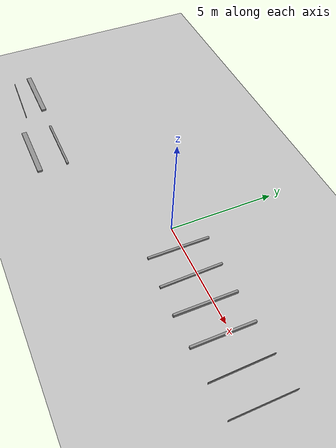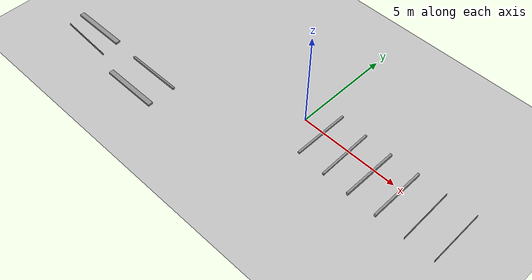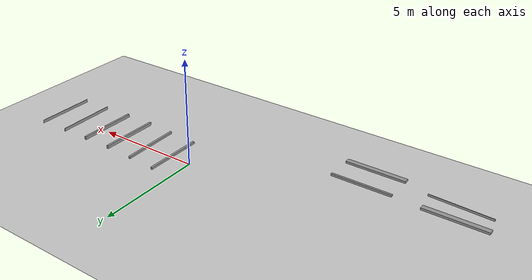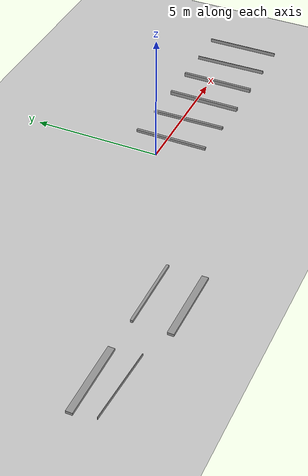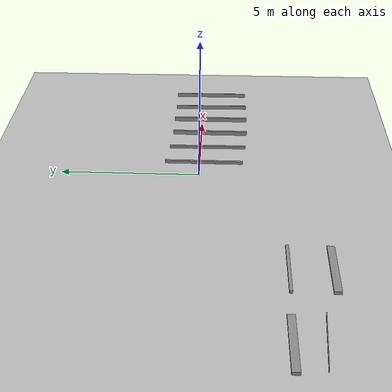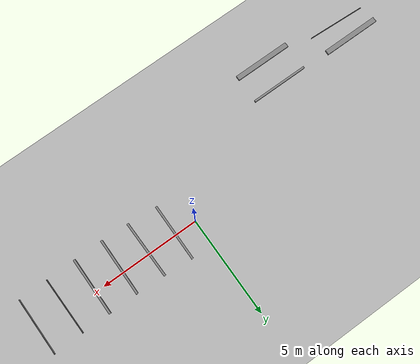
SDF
<sdf version="1.7">
 <world name="default">
  <model name="ground_plane">
   <static>1</static>
   <link name="link">
    <collision name="collision">
     <geometry><plane><normal>0 0 1</normal><size>100 100</size></plane></geometry>
     <surface><friction><ode><mu>0.7</mu><mu2>0.7</mu2></ode></friction></surface>
    </collision>
    <visual name="visual">
     <cast_shadows>0</cast_shadows>
     <geometry><plane><normal>0 0 1</normal><size>100 100</size></plane></geometry>
     <material>
      <script><uri>file://media/materials/scripts/gazebo.material</uri><name>Gazebo/Grey</name></script>
     </material>
    </visual>
   </link>
  </model>
  <light name="sun" type="directional">
   <pose>0 0 10 0 -0 0</pose>
   <diffuse>0.8 0.8 0.8 1</diffuse>
   <specular>0.1 0.1 0.1 1</specular>
   <attenuation>
    <range>1000</range>
    <constant>0.9</constant>
    <linear>0.01</linear>
    <quadratic>0.001</quadratic>
   </attenuation>
   <direction>-0.5 0.5 -1</direction>
   <spot><inner_angle>0</inner_angle><outer_angle>0</outer_angle><falloff>0</falloff></spot>
  </light>
  <gravity>0 0 -9.81</gravity>
  <magnetic_field>6e-06 2.3e-05 -4.2e-05</magnetic_field>
  <atmosphere type="adiabatic"/>
  <physics name="default_physics" default="0" type="ode">
   <max_step_size>0.001</max_step_size>
   <real_time_factor>1</real_time_factor>
   <real_time_update_rate>1000</real_time_update_rate>
  </physics>
  <scene><ambient>0.4 0.4 0.4 1</ambient><background>0.7 0.7 0.7 1</background><shadows>1</shadows></scene>
  <spherical_coordinates>
   <surface_model>EARTH_WGS84</surface_model>
   <latitude_deg>0</latitude_deg>
   <longitude_deg>0</longitude_deg>
   <elevation>0</elevation>
   <heading_deg>0</heading_deg>
  </spherical_coordinates>
  <model name="pipe_0.1">
   <link name="link">
    <inertial>
     <mass>1</mass>
     <inertia>
      <ixx>0.166667</ixx>
      <ixy>0</ixy>
      <ixz>0</ixz>
      <iyy>0.166667</iyy>
      <iyz>0</iyz>
      <izz>0.166667</izz>
     </inertia>
    </inertial>
    <visual name="visual">
     <geometry><box><size>2.87721 0.1 0.1</size></box></geometry>
     <material>
      <script><name>Gazebo/Grey</name><uri>file://media/materials/scripts/gazebo.material</uri></script>
      <shader type="pixel"><normal_map>__default__</normal_map></shader>
      <ambient>0.3 0.3 0.3 1</ambient>
      <diffuse>0.7 0.7 0.7 1</diffuse>
      <specular>0.01 0.01 0.01 1</specular>
      <emissive>0 0 0 1</emissive>
     </material>
    </visual>
    <collision name="collision">
     <geometry><box><size>2.87721 0.1 0.1</size></box></geometry>
     <surface>
      <friction>
       <ode><mu>1</mu><mu2>1</mu2><fdir1>0 0 0</fdir1><slip1>0</slip1><slip2>0</slip2></ode>
       <torsional>
        <coefficient>1</coefficient>
        <patch_radius>0</patch_radius>
        <surface_radius>0</surface_radius>
        <use_patch_radius>1</use_patch_radius>
        <ode><slip>0</slip></ode>
       </torsional>
      </friction>
      <bounce><restitution_coefficient>0</restitution_coefficient><threshold>1e+06</threshold></bounce>
      <contact>
       <collide_without_contact>0</collide_without_contact>
       <collide_without_contact_bitmask>1</collide_without_contact_bitmask>
       <collide_bitmask>1</collide_bitmask>
       <ode>
        <soft_cfm>0</soft_cfm>
        <soft_erp>0.2</soft_erp>
        <kp>1e+13</kp>
        <kd>1</kd>
        <max_vel>0.01</max_vel>
        <min_depth>0</min_depth>
       </ode>
       <bullet>
        <split_impulse>1</split_impulse>
        <split_impulse_penetration_threshold>-0.01</split_impulse_penetration_threshold>
        <soft_cfm>0</soft_cfm>
        <soft_erp>0.2</soft_erp>
        <kp>1e+13</kp>
        <kd>1</kd>
       </bullet>
      </contact>
     </surface>
    </collision>
   </link>
   <static>1</static>
   <pose>2.53264 -0.256496 0.049491 0 0 -1.55362</pose>
  </model>
  <model name="pipe_0.15">
   <link name="link">
    <inertial>
     <mass>1</mass>
     <inertia>
      <ixx>0.166667</ixx>
      <ixy>0</ixy>
      <ixz>0</ixz>
      <iyy>0.166667</iyy>
      <iyz>0</iyz>
      <izz>0.166667</izz>
     </inertia>
    </inertial>
    <visual name="visual">
     <geometry><box><size>2.87721 0.1 0.15</size></box></geometry>
     <material>
      <script><name>Gazebo/Grey</name><uri>file://media/materials/scripts/gazebo.material</uri></script>
      <shader type="pixel"><normal_map>__default__</normal_map></shader>
      <ambient>0.3 0.3 0.3 1</ambient>
      <diffuse>0.7 0.7 0.7 1</diffuse>
      <specular>0.01 0.01 0.01 1</specular>
      <emissive>0 0 0 1</emissive>
     </material>
    </visual>
    <collision name="collision">
     <geometry><box><size>2.87721 0.1 0.15</size></box></geometry>
     <surface>
      <friction>
       <ode><mu>1</mu><mu2>1</mu2><fdir1>0 0 0</fdir1><slip1>0</slip1><slip2>0</slip2></ode>
       <torsional>
        <coefficient>1</coefficient>
        <patch_radius>0</patch_radius>
        <surface_radius>0</surface_radius>
        <use_patch_radius>1</use_patch_radius>
        <ode><slip>0</slip></ode>
       </torsional>
      </friction>
      <bounce><restitution_coefficient>0</restitution_coefficient><threshold>1e+06</threshold></bounce>
      <contact>
       <collide_without_contact>0</collide_without_contact>
       <collide_without_contact_bitmask>1</collide_without_contact_bitmask>
       <collide_bitmask>1</collide_bitmask>
       <ode>
        <soft_cfm>0</soft_cfm>
        <soft_erp>0.2</soft_erp>
        <kp>1e+13</kp>
        <kd>1</kd>
        <max_vel>0.01</max_vel>
        <min_depth>0</min_depth>
       </ode>
       <bullet>
        <split_impulse>1</split_impulse>
        <split_impulse_penetration_threshold>-0.01</split_impulse_penetration_threshold>
        <soft_cfm>0</soft_cfm>
        <soft_erp>0.2</soft_erp>
        <kp>1e+13</kp>
        <kd>1</kd>
       </bullet>
      </contact>
     </surface>
    </collision>
   </link>
   <static>1</static>
   <pose>5.40253 -0.317424 0.073658 0 0 -1.57266</pose>
  </model>
  <model name="pipe_0.1_clone">
   <link name="link">
    <inertial>
     <mass>1</mass>
     <inertia>
      <ixx>0.166667</ixx>
      <ixy>0</ixy>
      <ixz>0</ixz>
      <iyy>0.166667</iyy>
      <iyz>0</iyz>
      <izz>0.166667</izz>
     </inertia>
    </inertial>
    <visual name="visual">
     <geometry><box><size>2.87721 0.1 0.1</size></box></geometry>
     <material>
      <script><name>Gazebo/Grey</name><uri>file://media/materials/scripts/gazebo.material</uri></script>
      <shader type="pixel"><normal_map>__default__</normal_map></shader>
      <ambient>0.3 0.3 0.3 1</ambient>
      <diffuse>0.7 0.7 0.7 1</diffuse>
      <specular>0.01 0.01 0.01 1</specular>
      <emissive>0 0 0 1</emissive>
     </material>
    </visual>
    <collision name="collision">
     <geometry><box><size>2.87721 0.1 0.1</size></box></geometry>
     <surface>
      <friction>
       <ode><mu>1</mu><mu2>1</mu2><fdir1>0 0 0</fdir1><slip1>0</slip1><slip2>0</slip2></ode>
       <torsional>
        <coefficient>1</coefficient>
        <patch_radius>0</patch_radius>
        <surface_radius>0</surface_radius>
        <use_patch_radius>1</use_patch_radius>
        <ode><slip>0</slip></ode>
       </torsional>
      </friction>
      <bounce><restitution_coefficient>0</restitution_coefficient><threshold>1e+06</threshold></bounce>
      <contact>
       <collide_without_contact>0</collide_without_contact>
       <collide_without_contact_bitmask>1</collide_without_contact_bitmask>
       <collide_bitmask>1</collide_bitmask>
       <ode>
        <soft_cfm>0</soft_cfm>
        <soft_erp>0.2</soft_erp>
        <kp>1e+13</kp>
        <kd>1</kd>
        <max_vel>0.01</max_vel>
        <min_depth>0</min_depth>
       </ode>
       <bullet>
        <split_impulse>1</split_impulse>
        <split_impulse_penetration_threshold>-0.01</split_impulse_penetration_threshold>
        <soft_cfm>0</soft_cfm>
        <soft_erp>0.2</soft_erp>
        <kp>1e+13</kp>
        <kd>1</kd>
       </bullet>
      </contact>
     </surface>
    </collision>
   </link>
   <static>1</static>
   <pose>1.0721 -0.148517 0.049491 0 0 -1.57462</pose>
  </model>
  <model name="pipe_0.15_clone">
   <link name="link">
    <inertial>
     <mass>1</mass>
     <inertia>
      <ixx>0.166667</ixx>
      <ixy>0</ixy>
      <ixz>0</ixz>
      <iyy>0.166667</iyy>
      <iyz>0</iyz>
      <izz>0.166667</izz>
     </inertia>
    </inertial>
    <visual name="visual">
     <geometry><box><size>2.87721 0.1 0.15</size></box></geometry>
     <material>
      <script><name>Gazebo/Grey</name><uri>file://media/materials/scripts/gazebo.material</uri></script>
      <shader type="pixel"><normal_map>__default__</normal_map></shader>
      <ambient>0.3 0.3 0.3 1</ambient>
      <diffuse>0.7 0.7 0.7 1</diffuse>
      <specular>0.01 0.01 0.01 1</specular>
      <emissive>0 0 0 1</emissive>
     </material>
    </visual>
    <collision name="collision">
     <geometry><box><size>2.87721 0.1 0.15</size></box></geometry>
     <surface>
      <friction>
       <ode><mu>1</mu><mu2>1</mu2><fdir1>0 0 0</fdir1><slip1>0</slip1><slip2>0</slip2></ode>
       <torsional>
        <coefficient>1</coefficient>
        <patch_radius>0</patch_radius>
        <surface_radius>0</surface_radius>
        <use_patch_radius>1</use_patch_radius>
        <ode><slip>0</slip></ode>
       </torsional>
      </friction>
      <bounce><restitution_coefficient>0</restitution_coefficient><threshold>1e+06</threshold></bounce>
      <contact>
       <collide_without_contact>0</collide_without_contact>
       <collide_without_contact_bitmask>1</collide_without_contact_bitmask>
       <collide_bitmask>1</collide_bitmask>
       <ode>
        <soft_cfm>0</soft_cfm>
        <soft_erp>0.2</soft_erp>
        <kp>1e+13</kp>
        <kd>1</kd>
        <max_vel>0.01</max_vel>
        <min_depth>0</min_depth>
       </ode>
       <bullet>
        <split_impulse>1</split_impulse>
        <split_impulse_penetration_threshold>-0.01</split_impulse_penetration_threshold>
        <soft_cfm>0</soft_cfm>
        <soft_erp>0.2</soft_erp>
        <kp>1e+13</kp>
        <kd>1</kd>
       </bullet>
      </contact>
     </surface>
    </collision>
   </link>
   <static>1</static>
   <pose>3.94317 -0.320369 0.073658 0 0 -1.57574</pose>
  </model>
  <model name="pipe_0.1_clone_clone">
   <link name="link">
    <inertial>
     <mass>1</mass>
     <inertia>
      <ixx>0.166667</ixx>
      <ixy>0</ixy>
      <ixz>0</ixz>
      <iyy>0.166667</iyy>
      <iyz>0</iyz>
      <izz>0.166667</izz>
     </inertia>
    </inertial>
    <visual name="visual">
     <geometry><box><size>2.87721 0.0999989 0.1</size></box></geometry>
     <material>
      <script><name>Gazebo/Grey</name><uri>file://media/materials/scripts/gazebo.material</uri></script>
      <shader type="pixel"><normal_map>__default__</normal_map></shader>
      <ambient>0.3 0.3 0.3 1</ambient>
      <diffuse>0.7 0.7 0.7 1</diffuse>
      <specular>0.01 0.01 0.01 1</specular>
      <emissive>0 0 0 1</emissive>
     </material>
    </visual>
    <collision name="collision">
     <geometry><box><size>2.87721 0.0999989 0.1</size></box></geometry>
     <surface>
      <friction>
       <ode><mu>1</mu><mu2>1</mu2><fdir1>0 0 0</fdir1><slip1>0</slip1><slip2>0</slip2></ode>
       <torsional>
        <coefficient>1</coefficient>
        <patch_radius>0</patch_radius>
        <surface_radius>0</surface_radius>
        <use_patch_radius>1</use_patch_radius>
        <ode><slip>0</slip></ode>
       </torsional>
      </friction>
      <bounce><restitution_coefficient>0</restitution_coefficient><threshold>1e+06</threshold></bounce>
      <contact>
       <collide_without_contact>0</collide_without_contact>
       <collide_without_contact_bitmask>1</collide_without_contact_bitmask>
       <collide_bitmask>1</collide_bitmask>
       <ode>
        <soft_cfm>0</soft_cfm>
        <soft_erp>0.2</soft_erp>
        <kp>1e+13</kp>
        <kd>1</kd>
        <max_vel>0.01</max_vel>
        <min_depth>0</min_depth>
       </ode>
       <bullet>
        <split_impulse>1</split_impulse>
        <split_impulse_penetration_threshold>-0.01</split_impulse_penetration_threshold>
        <soft_cfm>0</soft_cfm>
        <soft_erp>0.2</soft_erp>
        <kp>1e+13</kp>
        <kd>1</kd>
       </bullet>
      </contact>
     </surface>
    </collision>
   </link>
   <static>1</static>
   <pose>-6.95701 -2.94768 0.049491 0 -0 0</pose>
  </model>
  <model name="pipe_0.1_clone_clone_clone">
   <link name="link">
    <inertial>
     <mass>1</mass>
     <inertia>
      <ixx>0.166667</ixx>
      <ixy>0</ixy>
      <ixz>0</ixz>
      <iyy>0.166667</iyy>
      <iyz>0</iyz>
      <izz>0.166667</izz>
     </inertia>
    </inertial>
    <visual name="visual">
     <geometry><box><size>2.87721 0.243662 0.1</size></box></geometry>
     <material>
      <script><name>Gazebo/Grey</name><uri>file://media/materials/scripts/gazebo.material</uri></script>
      <shader type="pixel"><normal_map>__default__</normal_map></shader>
      <ambient>0.3 0.3 0.3 1</ambient>
      <diffuse>0.7 0.7 0.7 1</diffuse>
      <specular>0.01 0.01 0.01 1</specular>
      <emissive>0 0 0 1</emissive>
     </material>
    </visual>
    <collision name="collision">
     <geometry><box><size>2.87721 0.243662 0.1</size></box></geometry>
     <surface>
      <friction>
       <ode><mu>1</mu><mu2>1</mu2><fdir1>0 0 0</fdir1><slip1>0</slip1><slip2>0</slip2></ode>
       <torsional>
        <coefficient>1</coefficient>
        <patch_radius>0</patch_radius>
        <surface_radius>0</surface_radius>
        <use_patch_radius>1</use_patch_radius>
        <ode><slip>0</slip></ode>
       </torsional>
      </friction>
      <bounce><restitution_coefficient>0</restitution_coefficient><threshold>1e+06</threshold></bounce>
      <contact>
       <collide_without_contact>0</collide_without_contact>
       <collide_without_contact_bitmask>1</collide_without_contact_bitmask>
       <collide_bitmask>1</collide_bitmask>
       <ode>
        <soft_cfm>0</soft_cfm>
        <soft_erp>0.2</soft_erp>
        <kp>1e+13</kp>
        <kd>1</kd>
        <max_vel>0.01</max_vel>
        <min_depth>0</min_depth>
       </ode>
       <bullet>
        <split_impulse>1</split_impulse>
        <split_impulse_penetration_threshold>-0.01</split_impulse_penetration_threshold>
        <soft_cfm>0</soft_cfm>
        <soft_erp>0.2</soft_erp>
        <kp>1e+13</kp>
        <kd>1</kd>
       </bullet>
      </contact>
     </surface>
    </collision>
   </link>
   <static>1</static>
   <pose>-6.96811 -4.32315 0.049491 0 -0 0</pose>
  </model>
  <model name="pipe_0.1_clone_clone_clone_0">
   <link name="link">
    <inertial>
     <mass>1</mass>
     <inertia>
      <ixx>0.166667</ixx>
      <ixy>0</ixy>
      <ixz>0</ixz>
      <iyy>0.166667</iyy>
      <iyz>0</iyz>
      <izz>0.166667</izz>
     </inertia>
    </inertial>
    <visual name="visual">
     <geometry><box><size>2.87721 0.243665 0.1</size></box></geometry>
     <material>
      <script><name>Gazebo/Grey</name><uri>file://media/materials/scripts/gazebo.material</uri></script>
      <shader type="pixel"><normal_map>__default__</normal_map></shader>
      <ambient>0.3 0.3 0.3 1</ambient>
      <diffuse>0.7 0.7 0.7 1</diffuse>
      <specular>0.01 0.01 0.01 1</specular>
      <emissive>0 0 0 1</emissive>
     </material>
    </visual>
    <collision name="collision">
     <geometry><box><size>2.87721 0.243665 0.1</size></box></geometry>
     <surface>
      <friction>
       <ode><mu>1</mu><mu2>1</mu2><fdir1>0 0 0</fdir1><slip1>0</slip1><slip2>0</slip2></ode>
       <torsional>
        <coefficient>1</coefficient>
        <patch_radius>0</patch_radius>
        <surface_radius>0</surface_radius>
        <use_patch_radius>1</use_patch_radius>
        <ode><slip>0</slip></ode>
       </torsional>
      </friction>
      <bounce><restitution_coefficient>0</restitution_coefficient><threshold>1e+06</threshold></bounce>
      <contact>
       <collide_without_contact>0</collide_without_contact>
       <collide_without_contact_bitmask>1</collide_without_contact_bitmask>
       <collide_bitmask>1</collide_bitmask>
       <ode>
        <soft_cfm>0</soft_cfm>
        <soft_erp>0.2</soft_erp>
        <kp>1e+13</kp>
        <kd>1</kd>
        <max_vel>0.01</max_vel>
        <min_depth>0</min_depth>
       </ode>
       <bullet>
        <split_impulse>1</split_impulse>
        <split_impulse_penetration_threshold>-0.01</split_impulse_penetration_threshold>
        <soft_cfm>0</soft_cfm>
        <soft_erp>0.2</soft_erp>
        <kp>1e+13</kp>
        <kd>1</kd>
       </bullet>
      </contact>
     </surface>
    </collision>
   </link>
   <static>1</static>
   <pose>-11.1597 -2.88495 0.049491 0 -0 0</pose>
  </model>
  <model name="pipe_0.1_clone_clone_clone_0_clone">
   <link name="link">
    <inertial>
     <mass>1</mass>
     <inertia>
      <ixx>0.166667</ixx>
      <ixy>0</ixy>
      <ixz>0</ixz>
      <iyy>0.166667</iyy>
      <iyz>0</iyz>
      <izz>0.166667</izz>
     </inertia>
    </inertial>
    <visual name="visual">
     <geometry><box><size>2.87721 0.020298 0.0999996</size></box></geometry>
     <material>
      <script><name>Gazebo/Grey</name><uri>file://media/materials/scripts/gazebo.material</uri></script>
      <shader type="pixel"><normal_map>__default__</normal_map></shader>
      <ambient>0.3 0.3 0.3 1</ambient>
      <diffuse>0.7 0.7 0.7 1</diffuse>
      <specular>0.01 0.01 0.01 1</specular>
      <emissive>0 0 0 1</emissive>
     </material>
    </visual>
    <collision name="collision">
     <geometry><box><size>2.87721 0.020298 0.0999996</size></box></geometry>
     <surface>
      <friction>
       <ode><mu>1</mu><mu2>1</mu2><fdir1>0 0 0</fdir1><slip1>0</slip1><slip2>0</slip2></ode>
       <torsional>
        <coefficient>1</coefficient>
        <patch_radius>0</patch_radius>
        <surface_radius>0</surface_radius>
        <use_patch_radius>1</use_patch_radius>
        <ode><slip>0</slip></ode>
       </torsional>
      </friction>
      <bounce><restitution_coefficient>0</restitution_coefficient><threshold>1e+06</threshold></bounce>
      <contact>
       <collide_without_contact>0</collide_without_contact>
       <collide_without_contact_bitmask>1</collide_without_contact_bitmask>
       <collide_bitmask>1</collide_bitmask>
       <ode>
        <soft_cfm>0</soft_cfm>
        <soft_erp>0.2</soft_erp>
        <kp>1e+13</kp>
        <kd>1</kd>
        <max_vel>0.01</max_vel>
        <min_depth>0</min_depth>
       </ode>
       <bullet>
        <split_impulse>1</split_impulse>
        <split_impulse_penetration_threshold>-0.01</split_impulse_penetration_threshold>
        <soft_cfm>0</soft_cfm>
        <soft_erp>0.2</soft_erp>
        <kp>1e+13</kp>
        <kd>1</kd>
       </bullet>
      </contact>
     </surface>
    </collision>
   </link>
   <static>1</static>
   <pose>-10.9974 -3.81674 0.049491 0 0 -0.049795</pose>
  </model>
  <model name="pipe_0.1_clone_clone_clone_0_clone_clone">
   <link name="link">
    <inertial>
     <mass>1</mass>
     <inertia>
      <ixx>0.166667</ixx>
      <ixy>0</ixy>
      <ixz>0</ixz>
      <iyy>0.166667</iyy>
      <iyz>0</iyz>
      <izz>0.166667</izz>
     </inertia>
    </inertial>
    <visual name="visual">
     <geometry><box><size>2.87721 0.020298 0.157388</size></box></geometry>
     <material>
      <script><name>Gazebo/Grey</name><uri>file://media/materials/scripts/gazebo.material</uri></script>
      <shader type="pixel"><normal_map>__default__</normal_map></shader>
      <ambient>0.3 0.3 0.3 1</ambient>
      <diffuse>0.7 0.7 0.7 1</diffuse>
      <specular>0.01 0.01 0.01 1</specular>
      <emissive>0 0 0 1</emissive>
     </material>
    </visual>
    <collision name="collision">
     <geometry><box><size>2.87721 0.020298 0.157388</size></box></geometry>
     <surface>
      <friction>
       <ode><mu>1</mu><mu2>1</mu2><fdir1>0 0 0</fdir1><slip1>0</slip1><slip2>0</slip2></ode>
       <torsional>
        <coefficient>1</coefficient>
        <patch_radius>0</patch_radius>
        <surface_radius>0</surface_radius>
        <use_patch_radius>1</use_patch_radius>
        <ode><slip>0</slip></ode>
       </torsional>
      </friction>
      <bounce><restitution_coefficient>0</restitution_coefficient><threshold>1e+06</threshold></bounce>
      <contact>
       <collide_without_contact>0</collide_without_contact>
       <collide_without_contact_bitmask>1</collide_without_contact_bitmask>
       <collide_bitmask>1</collide_bitmask>
       <ode>
        <soft_cfm>0</soft_cfm>
        <soft_erp>0.2</soft_erp>
        <kp>1e+13</kp>
        <kd>1</kd>
        <max_vel>0.01</max_vel>
        <min_depth>0</min_depth>
       </ode>
       <bullet>
        <split_impulse>1</split_impulse>
        <split_impulse_penetration_threshold>-0.01</split_impulse_penetration_threshold>
        <soft_cfm>0</soft_cfm>
        <soft_erp>0.2</soft_erp>
        <kp>1e+13</kp>
        <kd>1</kd>
       </bullet>
      </contact>
     </surface>
    </collision>
   </link>
   <static>1</static>
   <pose>6.85746 -0.31422 0.049491 0 0 -1.55429</pose>
  </model>
  <model name="pipe_0.1_clone_clone_clone_0_clone_clone_0">
   <link name="link">
    <inertial>
     <mass>1</mass>
     <inertia>
      <ixx>0.166667</ixx>
      <ixy>0</ixy>
      <ixz>0</ixz>
      <iyy>0.166667</iyy>
      <iyz>0</iyz>
      <izz>0.166667</izz>
     </inertia>
    </inertial>
    <visual name="visual">
     <geometry><box><size>2.87721 0.020298 0.157388</size></box></geometry>
     <material>
      <script><name>Gazebo/Grey</name><uri>file://media/materials/scripts/gazebo.material</uri></script>
      <shader type="pixel"><normal_map>__default__</normal_map></shader>
      <ambient>0.3 0.3 0.3 1</ambient>
      <diffuse>0.7 0.7 0.7 1</diffuse>
      <specular>0.01 0.01 0.01 1</specular>
      <emissive>0 0 0 1</emissive>
     </material>
    </visual>
    <collision name="collision">
     <geometry><box><size>2.87721 0.020298 0.157388</size></box></geometry>
     <surface>
      <friction>
       <ode><mu>1</mu><mu2>1</mu2><fdir1>0 0 0</fdir1><slip1>0</slip1><slip2>0</slip2></ode>
       <torsional>
        <coefficient>1</coefficient>
        <patch_radius>0</patch_radius>
        <surface_radius>0</surface_radius>
        <use_patch_radius>1</use_patch_radius>
        <ode><slip>0</slip></ode>
       </torsional>
      </friction>
      <bounce><restitution_coefficient>0</restitution_coefficient><threshold>1e+06</threshold></bounce>
      <contact>
       <collide_without_contact>0</collide_without_contact>
       <collide_without_contact_bitmask>1</collide_without_contact_bitmask>
       <collide_bitmask>1</collide_bitmask>
       <ode>
        <soft_cfm>0</soft_cfm>
        <soft_erp>0.2</soft_erp>
        <kp>1e+13</kp>
        <kd>1</kd>
        <max_vel>0.01</max_vel>
        <min_depth>0</min_depth>
       </ode>
       <bullet>
        <split_impulse>1</split_impulse>
        <split_impulse_penetration_threshold>-0.01</split_impulse_penetration_threshold>
        <soft_cfm>0</soft_cfm>
        <soft_erp>0.2</soft_erp>
        <kp>1e+13</kp>
        <kd>1</kd>
       </bullet>
      </contact>
     </surface>
    </collision>
   </link>
   <static>1</static>
   <pose>8.33306 -0.285771 0.049491 0 0 -1.56632</pose>
  </model>
 </world>
</sdf>
